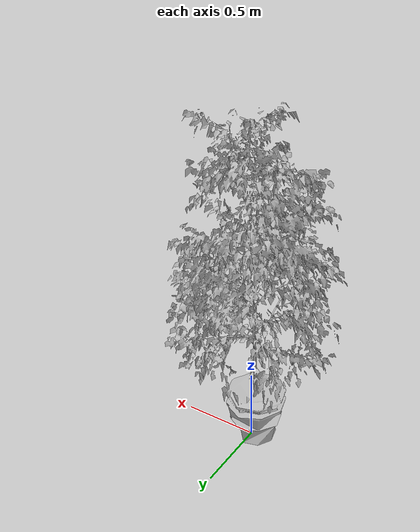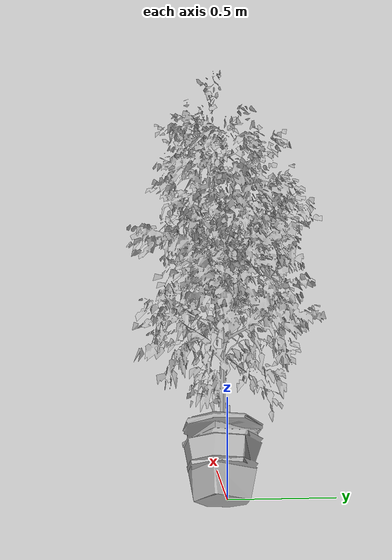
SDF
<?xml version="1.0"?>
<sdf version="1.6">
    <model name="plant">
      <link name="plant">
        <visual name="visual">
          <geometry>
            <mesh><uri>model://plant/meshes/plant.obj</uri></mesh>
          </geometry>
        </visual>
        <collision name="collision">
          <geometry>
            <box><size>2.32 1 1</size></box>
          </geometry>
        </collision>
      </link>
    </model>
</sdf>
